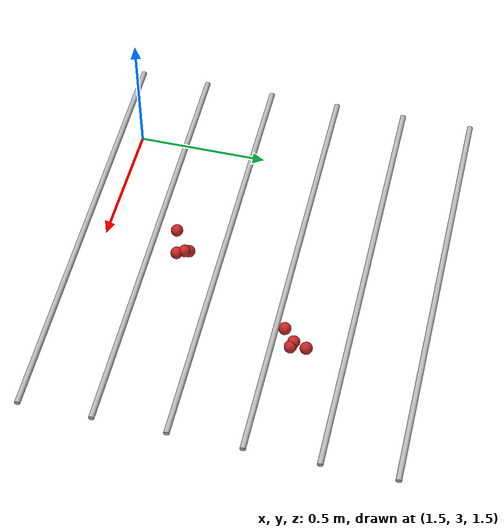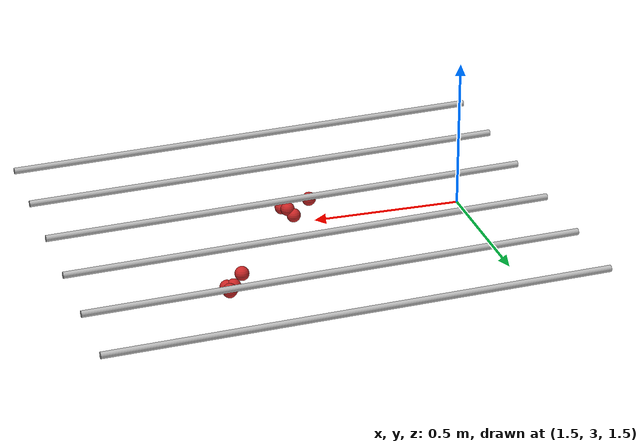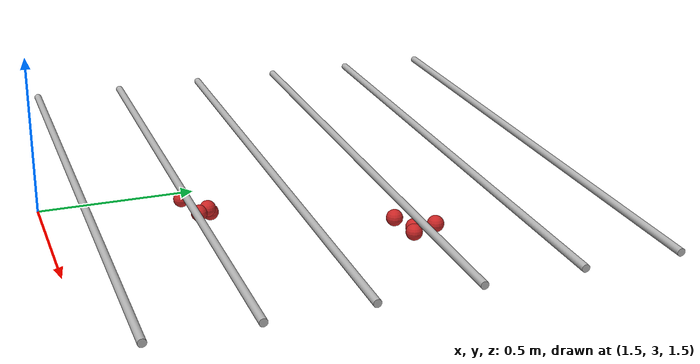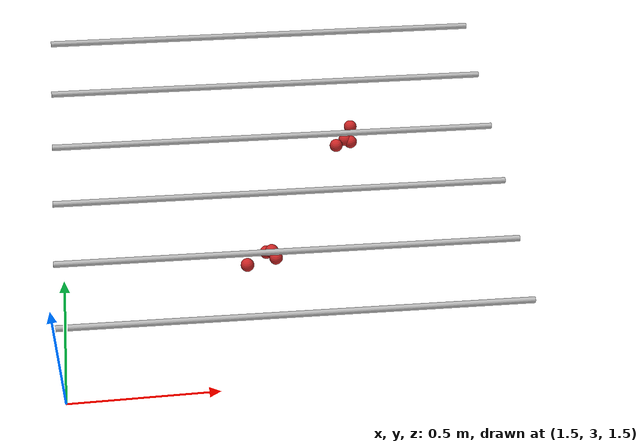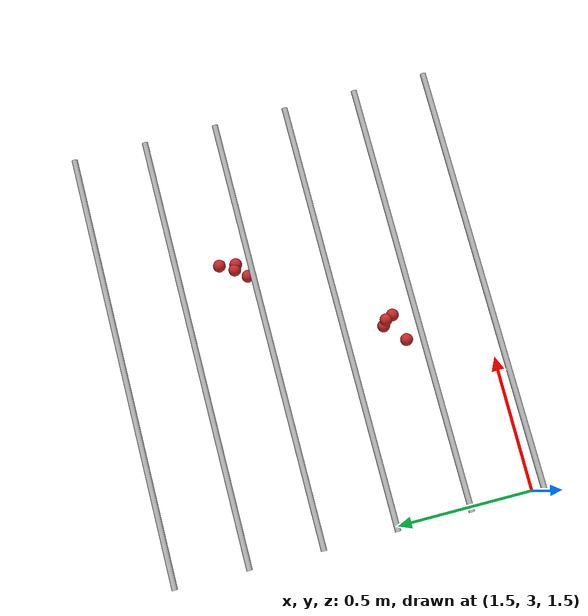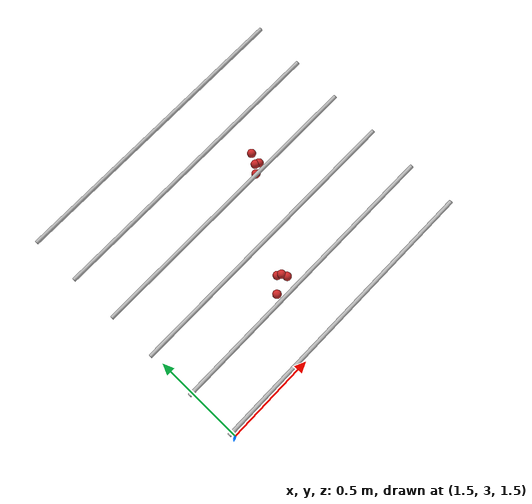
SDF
<sdf version="1.4">
 <model name="pergola">
  <link name="vine_25">
   <pose>2.25 3.03 1.85 0 -1.5374753309166493 0</pose>
   <collision name="collision">
    <geometry><cylinder><radius>0.01</radius><length>1.5008331019803633</length></cylinder></geometry>
   </collision>
   <visual name="visual">
    <geometry><cylinder><radius>0.01</radius><length>1.5008331019803633</length></cylinder></geometry>
    <material>
     <script>
      <uri>model://tree_trunk/materials/scripts</uri>
      <uri>model://tree_trunk/materials/textures</uri>
      <name>Tree/Bark</name>
     </script>
    </material>
   </visual>
   <inertial>
    <mass>5</mass>
    <inertia>
     <ixx>0.9386666666666668</ixx>
     <ixy>0.0</ixy>
     <ixz>0.0</ixz>
     <iyy>0.9386666666666668</iyy>
     <iyz>0.0</iyz>
     <izz>0.00025</izz>
    </inertia>
   </inertial>
  </link>
  <link name="vine_27">
   <pose>2.25 3.28 1.85 0 -1.5374753309166493 0</pose>
   <collision name="collision">
    <geometry><cylinder><radius>0.01</radius><length>1.5008331019803633</length></cylinder></geometry>
   </collision>
   <visual name="visual">
    <geometry><cylinder><radius>0.01</radius><length>1.5008331019803633</length></cylinder></geometry>
    <material>
     <script>
      <uri>model://tree_trunk/materials/scripts</uri>
      <uri>model://tree_trunk/materials/textures</uri>
      <name>Tree/Bark</name>
     </script>
    </material>
   </visual>
   <inertial>
    <mass>5</mass>
    <inertia>
     <ixx>0.9386666666666668</ixx>
     <ixy>0.0</ixy>
     <ixz>0.0</ixz>
     <iyy>0.9386666666666668</iyy>
     <iyz>0.0</iyz>
     <izz>0.00025</izz>
    </inertia>
   </inertial>
  </link>
  <link name="vine_29">
   <pose>2.25 3.53 1.85 0 -1.5374753309166493 0</pose>
   <collision name="collision">
    <geometry><cylinder><radius>0.01</radius><length>1.5008331019803633</length></cylinder></geometry>
   </collision>
   <visual name="visual">
    <geometry><cylinder><radius>0.01</radius><length>1.5008331019803633</length></cylinder></geometry>
    <material>
     <script>
      <uri>model://tree_trunk/materials/scripts</uri>
      <uri>model://tree_trunk/materials/textures</uri>
      <name>Tree/Bark</name>
     </script>
    </material>
   </visual>
   <inertial>
    <mass>5</mass>
    <inertia>
     <ixx>0.9386666666666668</ixx>
     <ixy>0.0</ixy>
     <ixz>0.0</ixz>
     <iyy>0.9386666666666668</iyy>
     <iyz>0.0</iyz>
     <izz>0.00025</izz>
    </inertia>
   </inertial>
  </link>
  <link name="vine_31">
   <pose>2.25 3.78 1.85 0 -1.5374753309166493 0</pose>
   <collision name="collision">
    <geometry><cylinder><radius>0.01</radius><length>1.5008331019803633</length></cylinder></geometry>
   </collision>
   <visual name="visual">
    <geometry><cylinder><radius>0.01</radius><length>1.5008331019803633</length></cylinder></geometry>
    <material>
     <script>
      <uri>model://tree_trunk/materials/scripts</uri>
      <uri>model://tree_trunk/materials/textures</uri>
      <name>Tree/Bark</name>
     </script>
    </material>
   </visual>
   <inertial>
    <mass>5</mass>
    <inertia>
     <ixx>0.9386666666666668</ixx>
     <ixy>0.0</ixy>
     <ixz>0.0</ixz>
     <iyy>0.9386666666666668</iyy>
     <iyz>0.0</iyz>
     <izz>0.00025</izz>
    </inertia>
   </inertial>
  </link>
  <link name="vine_33">
   <pose>2.25 4.03 1.85 0 -1.5374753309166493 0</pose>
   <collision name="collision">
    <geometry><cylinder><radius>0.01</radius><length>1.5008331019803633</length></cylinder></geometry>
   </collision>
   <visual name="visual">
    <geometry><cylinder><radius>0.01</radius><length>1.5008331019803633</length></cylinder></geometry>
    <material>
     <script>
      <uri>model://tree_trunk/materials/scripts</uri>
      <uri>model://tree_trunk/materials/textures</uri>
      <name>Tree/Bark</name>
     </script>
    </material>
   </visual>
   <inertial>
    <mass>5</mass>
    <inertia>
     <ixx>0.9386666666666668</ixx>
     <ixy>0.0</ixy>
     <ixz>0.0</ixz>
     <iyy>0.9386666666666668</iyy>
     <iyz>0.0</iyz>
     <izz>0.00025</izz>
    </inertia>
   </inertial>
  </link>
  <link name="vine_35">
   <pose>2.25 4.28 1.85 0 -1.5374753309166493 0</pose>
   <collision name="collision">
    <geometry><cylinder><radius>0.01</radius><length>1.5008331019803633</length></cylinder></geometry>
   </collision>
   <visual name="visual">
    <geometry><cylinder><radius>0.01</radius><length>1.5008331019803633</length></cylinder></geometry>
    <material>
     <script>
      <uri>model://tree_trunk/materials/scripts</uri>
      <uri>model://tree_trunk/materials/textures</uri>
      <name>Tree/Bark</name>
     </script>
    </material>
   </visual>
   <inertial>
    <mass>5</mass>
    <inertia>
     <ixx>0.9386666666666668</ixx>
     <ixy>0.0</ixy>
     <ixz>0.0</ixz>
     <iyy>0.9386666666666668</iyy>
     <iyz>0.0</iyz>
     <izz>0.00025</izz>
    </inertia>
   </inertial>
  </link>
  <link name="fruit_102">
   <pose>2.4667739871532754 3.798070989245613 1.7622165918304584 0 0 0</pose>
   <collision name="fruit_collision_102"><geometry><sphere><radius>0.022</radius></sphere></geometry></collision>
   <visual name="visual">
    <geometry><sphere><radius>0.022</radius></sphere></geometry>
    <material><script><name>Gazebo/Red</name></script></material>
   </visual>
   <inertial>
    <mass>0.05</mass>
    <inertia>
     <ixx>9.679999999999999e-06</ixx>
     <ixy>0.0</ixy>
     <ixz>0.0</ixz>
     <iyy>9.679999999999999e-06</iyy>
     <iyz>0.0</iyz>
     <izz>9.679999999999999e-06</izz>
    </inertia>
   </inertial>
   <sensor name="fruit_contact_102" type="contact">
    <plugin name="contact_plugin_102" filename="libcontact_plugin.so"/>
    <contact><collision>fruit_collision_102</collision><topic>fruit_contact_topic_102</topic></contact>
   </sensor>
  </link>
  <link name="fruit_112">
   <pose>2.1172800876880205 3.32160031368381 1.7422665527296177 0 0 0</pose>
   <collision name="fruit_collision_112"><geometry><sphere><radius>0.022</radius></sphere></geometry></collision>
   <visual name="visual">
    <geometry><sphere><radius>0.022</radius></sphere></geometry>
    <material><script><name>Gazebo/Red</name></script></material>
   </visual>
   <inertial>
    <mass>0.05</mass>
    <inertia>
     <ixx>9.679999999999999e-06</ixx>
     <ixy>0.0</ixy>
     <ixz>0.0</ixz>
     <iyy>9.679999999999999e-06</iyy>
     <iyz>0.0</iyz>
     <izz>9.679999999999999e-06</izz>
    </inertia>
   </inertial>
   <sensor name="fruit_contact_112" type="contact">
    <plugin name="contact_plugin_112" filename="libcontact_plugin.so"/>
    <contact><collision>fruit_collision_112</collision><topic>fruit_contact_topic_112</topic></contact>
   </sensor>
  </link>
  <link name="fruit_173">
   <pose>2.5026021370563076 3.837208311034126 1.7456491350576955 0 0 0</pose>
   <collision name="fruit_collision_173"><geometry><sphere><radius>0.022</radius></sphere></geometry></collision>
   <visual name="visual">
    <geometry><sphere><radius>0.022</radius></sphere></geometry>
    <material><script><name>Gazebo/Red</name></script></material>
   </visual>
   <inertial>
    <mass>0.05</mass>
    <inertia>
     <ixx>9.679999999999999e-06</ixx>
     <ixy>0.0</ixy>
     <ixz>0.0</ixz>
     <iyy>9.679999999999999e-06</iyy>
     <iyz>0.0</iyz>
     <izz>9.679999999999999e-06</izz>
    </inertia>
   </inertial>
   <sensor name="fruit_contact_173" type="contact">
    <plugin name="contact_plugin_173" filename="libcontact_plugin.so"/>
    <contact><collision>fruit_collision_173</collision><topic>fruit_contact_topic_173</topic></contact>
   </sensor>
  </link>
  <link name="fruit_217">
   <pose>2.2134786688577415 3.346133034091365 1.7369028098490036 0 0 0</pose>
   <collision name="fruit_collision_217"><geometry><sphere><radius>0.022</radius></sphere></geometry></collision>
   <visual name="visual">
    <geometry><sphere><radius>0.022</radius></sphere></geometry>
    <material><script><name>Gazebo/Red</name></script></material>
   </visual>
   <inertial>
    <mass>0.05</mass>
    <inertia>
     <ixx>9.679999999999999e-06</ixx>
     <ixy>0.0</ixy>
     <ixz>0.0</ixz>
     <iyy>9.679999999999999e-06</iyy>
     <iyz>0.0</iyz>
     <izz>9.679999999999999e-06</izz>
    </inertia>
   </inertial>
   <sensor name="fruit_contact_217" type="contact">
    <plugin name="contact_plugin_217" filename="libcontact_plugin.so"/>
    <contact><collision>fruit_collision_217</collision><topic>fruit_contact_topic_217</topic></contact>
   </sensor>
  </link>
  <link name="fruit_275">
   <pose>2.2019924676980547 3.372584225183147 1.7417626565566373 0 0 0</pose>
   <collision name="fruit_collision_275"><geometry><sphere><radius>0.022</radius></sphere></geometry></collision>
   <visual name="visual">
    <geometry><sphere><radius>0.022</radius></sphere></geometry>
    <material><script><name>Gazebo/Red</name></script></material>
   </visual>
   <inertial>
    <mass>0.05</mass>
    <inertia>
     <ixx>9.679999999999999e-06</ixx>
     <ixy>0.0</ixy>
     <ixz>0.0</ixz>
     <iyy>9.679999999999999e-06</iyy>
     <iyz>0.0</iyz>
     <izz>9.679999999999999e-06</izz>
    </inertia>
   </inertial>
   <sensor name="fruit_contact_275" type="contact">
    <plugin name="contact_plugin_275" filename="libcontact_plugin.so"/>
    <contact><collision>fruit_collision_275</collision><topic>fruit_contact_topic_275</topic></contact>
   </sensor>
  </link>
  <link name="fruit_346">
   <pose>2.1854274465055203 3.3841558634625977 1.7229087151684745 0 0 0</pose>
   <collision name="fruit_collision_346"><geometry><sphere><radius>0.022</radius></sphere></geometry></collision>
   <visual name="visual">
    <geometry><sphere><radius>0.022</radius></sphere></geometry>
    <material><script><name>Gazebo/Red</name></script></material>
   </visual>
   <inertial>
    <mass>0.05</mass>
    <inertia>
     <ixx>9.679999999999999e-06</ixx>
     <ixy>0.0</ixy>
     <ixz>0.0</ixz>
     <iyy>9.679999999999999e-06</iyy>
     <iyz>0.0</iyz>
     <izz>9.679999999999999e-06</izz>
    </inertia>
   </inertial>
   <sensor name="fruit_contact_346" type="contact">
    <plugin name="contact_plugin_346" filename="libcontact_plugin.so"/>
    <contact><collision>fruit_collision_346</collision><topic>fruit_contact_topic_346</topic></contact>
   </sensor>
  </link>
  <link name="fruit_445">
   <pose>2.521593008955972 3.8296609662374768 1.7404386259064644 0 0 0</pose>
   <collision name="fruit_collision_445"><geometry><sphere><radius>0.022</radius></sphere></geometry></collision>
   <visual name="visual">
    <geometry><sphere><radius>0.022</radius></sphere></geometry>
    <material><script><name>Gazebo/Red</name></script></material>
   </visual>
   <inertial>
    <mass>0.05</mass>
    <inertia>
     <ixx>9.679999999999999e-06</ixx>
     <ixy>0.0</ixy>
     <ixz>0.0</ixz>
     <iyy>9.679999999999999e-06</iyy>
     <iyz>0.0</iyz>
     <izz>9.679999999999999e-06</izz>
    </inertia>
   </inertial>
   <sensor name="fruit_contact_445" type="contact">
    <plugin name="contact_plugin_445" filename="libcontact_plugin.so"/>
    <contact><collision>fruit_collision_445</collision><topic>fruit_contact_topic_445</topic></contact>
   </sensor>
  </link>
  <link name="fruit_457">
   <pose>2.5272019988359284 3.885763030064079 1.7576893856519729 0 0 0</pose>
   <collision name="fruit_collision_457"><geometry><sphere><radius>0.022</radius></sphere></geometry></collision>
   <visual name="visual">
    <geometry><sphere><radius>0.022</radius></sphere></geometry>
    <material><script><name>Gazebo/Red</name></script></material>
   </visual>
   <inertial>
    <mass>0.05</mass>
    <inertia>
     <ixx>9.679999999999999e-06</ixx>
     <ixy>0.0</ixy>
     <ixz>0.0</ixz>
     <iyy>9.679999999999999e-06</iyy>
     <iyz>0.0</iyz>
     <izz>9.679999999999999e-06</izz>
    </inertia>
   </inertial>
   <sensor name="fruit_contact_457" type="contact">
    <plugin name="contact_plugin_457" filename="libcontact_plugin.so"/>
    <contact><collision>fruit_collision_457</collision><topic>fruit_contact_topic_457</topic></contact>
   </sensor>
  </link>
 </model>
</sdf>
